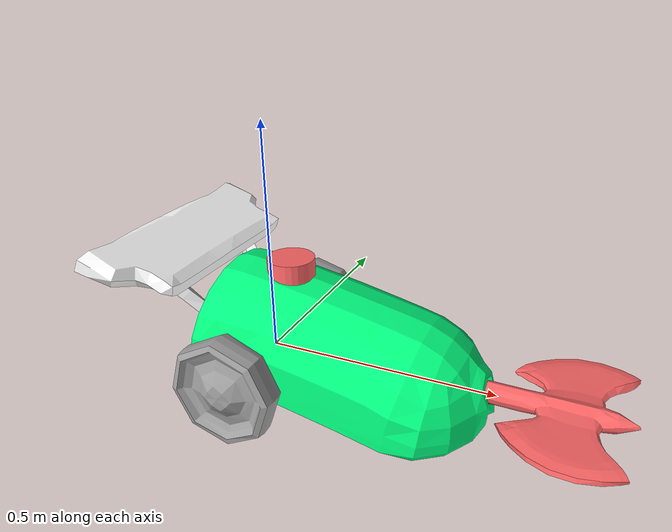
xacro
<?xml version="1.0"?>
<robot xmlns:xacro="http://www.ros.org/wiki/xacro">

    <xacro:include filename="../inertial_macros.xacro"/>

    <material name="white">
        <color rgba="1 1 1 1"/>
    </material>

    <material name="green">
        <color rgba="0 1 0.5 1"/>
    </material>

    <material name="gray">
        <color rgba="0.62 0.62 0.62 1"/>
    </material>

    <material name="red">
        <color rgba="1 0.4 0.4 1"/>
    </material>

    <xacro:arg name="robot_name" default="robot_core"/>
    <xacro:property name="robot_name" value="$(arg robot_name)"/>

    <!-- BASE LINK -->
    <link name="${robot_name}/base_link"></link>

    <!-- BASE FOOTPRINT LINK -->
    <!-- for 2d space reference. for mapping-->
    <joint name="${robot_name}/base_footprint_joint" type="fixed">
        <parent link="${robot_name}/base_link"/>
        <child link="${robot_name}/base_footprint"/>
        <origin xyz="0 0 0" rpy="0 0 0"/>
    </joint>

    <link name="${robot_name}/base_footprint">
    </link>

    <!-- chassis -->
    <joint name="${robot_name}/chassis_joint" type="fixed">
        <parent link="${robot_name}/base_link"/>
        <child link="${robot_name}/chassis"/>
        <origin xyz="0 0 0"/>
    </joint>

    <link name="${robot_name}/chassis">
        <visual>
            <origin xyz="0.3 0 -0.14" rpy="${pi/2} 0 ${pi/2}"/>
            <geometry>
                <mesh filename="file://$(find boxbots)/description/axeBot/meshes/chassis.dae" scale="0.10 0.10 0.10"/>
            </geometry>
            <material name="green"/>
        </visual>

        <collision>
            <origin xyz="0.3 0 -0.14" rpy="${pi/2} 0 ${pi/2}"/>
            <geometry>
                <mesh filename="file://$(find boxbots)/description/axeBot/meshes/chassis.dae" scale="0.09 0.1 0.1"/>
            </geometry>
        </collision>
        <xacro:inertial_box mass="2" x="0.6" y="0.4" z="0.3">
            <origin xyz="0.18 0 0.05" rpy="0 0 0"/>
        </xacro:inertial_box>
    </link>

    <gazebo reference="${robot_name}/chassis">
        <material>Gazebo/Turquoise</material>
    </gazebo>

    <!-- LEFT WHEEL -->
    <joint name="${robot_name}/left_wheel_joint" type="continuous">
        <parent link="${robot_name}/chassis"/>
        <child link="${robot_name}/left_wheel"/>
        <!-- y=+(ancho/2+grosor_rueda/2)  -->
        <origin xyz="0 0.225 0"/>
        <axis xyz="0 1 0"/>
    </joint>

    <link name="${robot_name}/left_wheel">
        <visual>
            <origin xyz="0.287 -0.225 -0.1427" rpy="${pi/2} 0 ${pi/2}"/>
            <geometry>
                <mesh filename="file://$(find boxbots)/description/axeBot/meshes/left_wheel.dae" scale="0.10 0.10 0.10"/>
            </geometry>
            <material name="gray"/>
        </visual>

        <collision>
            <origin xyz="0 -0.03 0" rpy="${pi/2} 0 0"/>
            <geometry>
                <cylinder radius="0.1" length="0.05"/>
            </geometry>
        </collision>

        <xacro:inertial_cylinder mass="0.2" length="0.05" radius="0.1">
            <origin xyz="0 0 0" rpy="0 0 0"/>
        </xacro:inertial_cylinder>
    </link>

    <gazebo reference="${robot_name}/left_wheel">
        <material>Gazebo/Gray</material>
    </gazebo>

    <!-- RIGHT WHEEL -->

    <joint name="${robot_name}/right_wheel_joint" type="continuous">
        <parent link="${robot_name}/chassis"/>
        <child link="${robot_name}/right_wheel"/>
        <!-- y=-(ancho/2+grosor_rueda/2)  -->
        <origin xyz="0 -0.225 0"/>
        <axis xyz="0 1 0"/>
    </joint>

    <link name="${robot_name}/right_wheel">
        <visual>
            <origin xyz="0.287 0.225 -0.1427" rpy="${pi/2} 0 ${pi/2}"/>
            <geometry>
                <mesh filename="file://$(find boxbots)/description/axeBot/meshes/right_wheel.dae" scale="0.10 0.10 0.10"/>
            </geometry>
            <material name="gray"/>
        </visual>

        <collision>
            <origin xyz="0 0.03 0" rpy="${pi/2} 0 0"/>
            <geometry>
                <cylinder radius="0.1" length="0.05"/>
            </geometry>
        </collision>

        <xacro:inertial_cylinder mass="0.2" length="0.05" radius="0.1">
            <origin xyz="0 0 0" rpy="0 0 0"/>
        </xacro:inertial_cylinder>
    </link>

    <gazebo reference="${robot_name}/right_wheel">
        <material>Gazebo/Gray</material>
    </gazebo>

    <!-- BALL WHEEL -->
    <joint name="${robot_name}/caster_wheel_joint" type="fixed">
        <parent link="${robot_name}/chassis"/>
        <child link="${robot_name}/caster_wheel"/>
        <origin xyz="0.36 0 -0.045"/>
    </joint>

    <link name="${robot_name}/caster_wheel">
        <visual>
            <origin xyz="-0.06 0 -0.09" rpy="${pi/2} 0 ${pi/2}"/>
            <geometry>
                <mesh filename="file://$(find boxbots)/description/axeBot/meshes/ball_wheel.dae" scale="0.10 0.10 0.10"/>
            </geometry>
            <material name="white"/>
        </visual>

        <collision>
            <origin xyz="-0.06 0 -0.09" rpy="${pi/2} 0 ${pi/2}"/>
            <geometry>
                <mesh filename="file://$(find boxbots)/description/axeBot/meshes/ball_wheel.dae" scale="0.10 0.10 0.10"/>
            </geometry>
        </collision>

        <xacro:inertial_sphere mass="1.0" radius="0.05">
            <origin xyz="0 0 0" rpy="0 0 0"/>
        </xacro:inertial_sphere>
    </link>

    <gazebo reference="${robot_name}/caster_wheel">
        <material>Gazebo/White</material>
        <mu1 value="0.001"/>
        <mu2 value="0.001"/>
    </gazebo>

    <!-- TAIL -->

    <joint name="${robot_name}/tail_joint" type="fixed">
        <parent link="${robot_name}/chassis"/>
        <child link="${robot_name}/tail"/>
        <origin xyz="-0.15 0 0.25"/>
    </joint>

    <link name="${robot_name}/tail">
        <visual>
            <origin xyz="0.4 0 -0.43" rpy="${pi/2} 0 ${pi/2}"/>
            <geometry>
                <mesh filename="file://$(find boxbots)/description/axeBot/meshes/tail.dae" scale="0.10 0.10 0.10"/>
            </geometry>
            <material name="white"/>
        </visual>

        <collision>
            <origin xyz="0.4 0 -0.43" rpy="${pi/2} 0 ${pi/2}"/>
            <geometry>
                <mesh filename="file://$(find boxbots)/description/axeBot/meshes/tail.dae" scale="0.10 0.10 0.10"/>
            </geometry>
        </collision>

        <xacro:inertial_box mass="0.5" x="0.2" y="0.49" z="0.1">
            <origin xyz="-0.04 0 -0.01" rpy="0 0 0"/>
        </xacro:inertial_box>

    </link>

    <gazebo reference="${robot_name}/tail">
        <material>Gazebo/YellowGlow</material>
    </gazebo>

    <!-- AXE -->

    <joint name="${robot_name}/axe_joint" type="fixed">
        <parent link="${robot_name}/chassis"/>
        <child link="${robot_name}/axe"/>
        <origin xyz="0.6 0 0.01" />
    </joint>

    <link name="${robot_name}/axe">

        <visual>
            <origin xyz="-0.3 0 -0.15" rpy="${pi/2} 0 ${pi/2}"/>
            <geometry>
                <mesh filename="file://$(find boxbots)/description/axeBot/meshes/axe.dae" scale="0.10 0.10 0.10"/>
            </geometry>
            <material name="red"/>
        </visual>

        <collision>
            <origin xyz="-0.3 0 -0.15" rpy="${pi/2} 0 ${pi/2}"/>
            <geometry>
                <mesh filename="file://$(find boxbots)/description/axeBot/meshes/axe.dae" scale="0.10 0.10 0.10"/>
            </geometry>
        </collision>

        <xacro:inertial_box mass="1.5" x="0.3" y="0.35" z="0.03">
            <origin xyz="0.04 0 0" rpy="0 0 0"/>
        </xacro:inertial_box>

    </link>

    <gazebo reference="${robot_name}/axe">
        <material>Gazebo/RedGlow</material>
    </gazebo>

    <!-- LIDAR SUPPORT LINK-->

    <joint name="${robot_name}/lidar_support_joint" type="fixed">
        <parent link="${robot_name}/tail"/>
        <child link="${robot_name}/lidar_support"/>
        <origin xyz="0.2 0 -0.1"/>
    </joint>

    <link name="${robot_name}/lidar_support">
        <visual>
            <origin xyz="0 0 0.035"/>
            <geometry>
                <cylinder radius="0.05" length="0.07"/>
            </geometry>
            <material name="red"/>
        </visual>

        <collision>
            <origin xyz="0 0 0.035"/>
            <geometry>
                <cylinder radius="0.05" length="0.07"/>
            </geometry>
        </collision>

        <xacro:inertial_cylinder mass="0.1" length="0.07" radius="0.05">
            <origin xyz="0 0 0"/>
        </xacro:inertial_cylinder>

    </link>

    <gazebo reference="${robot_name}/lidar_support">
        <material>Gazebo/Black</material>
    </gazebo>
</robot>
